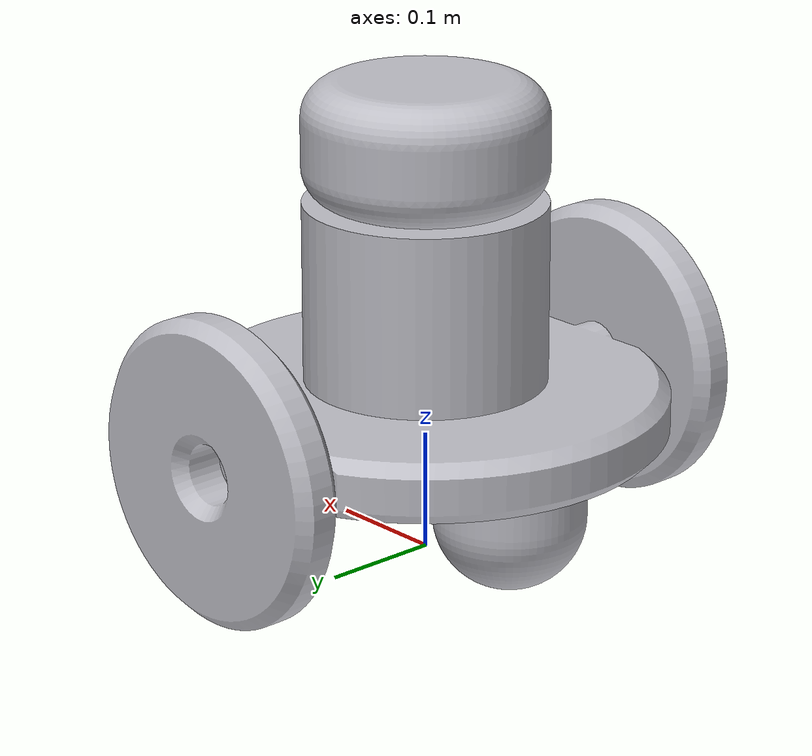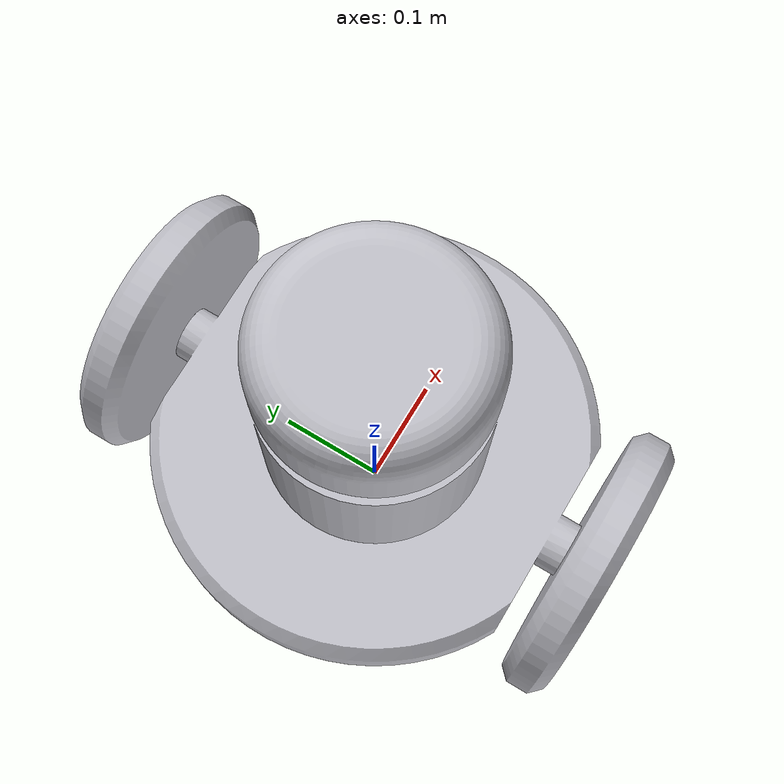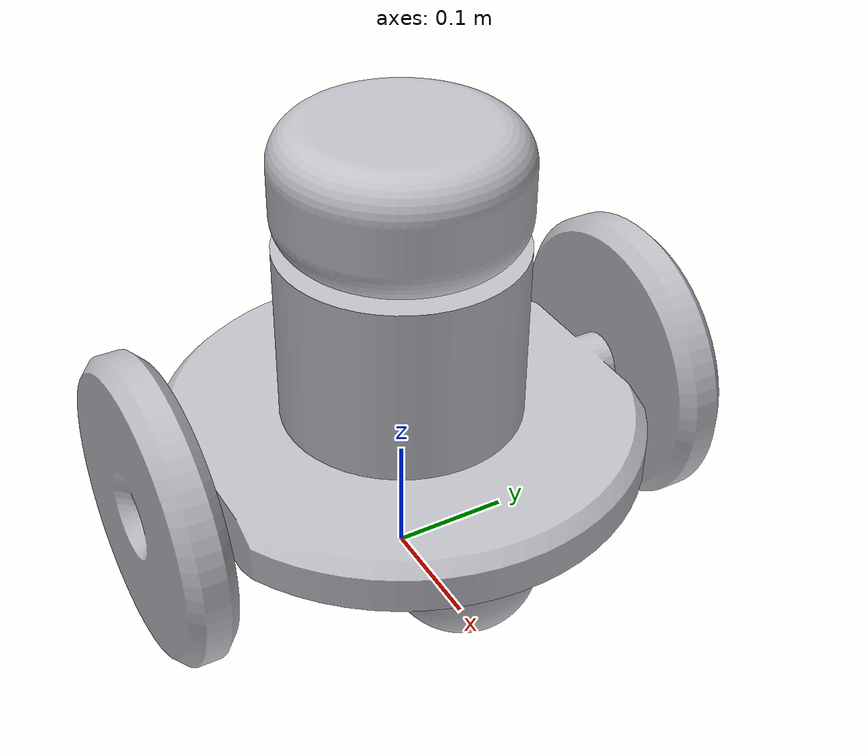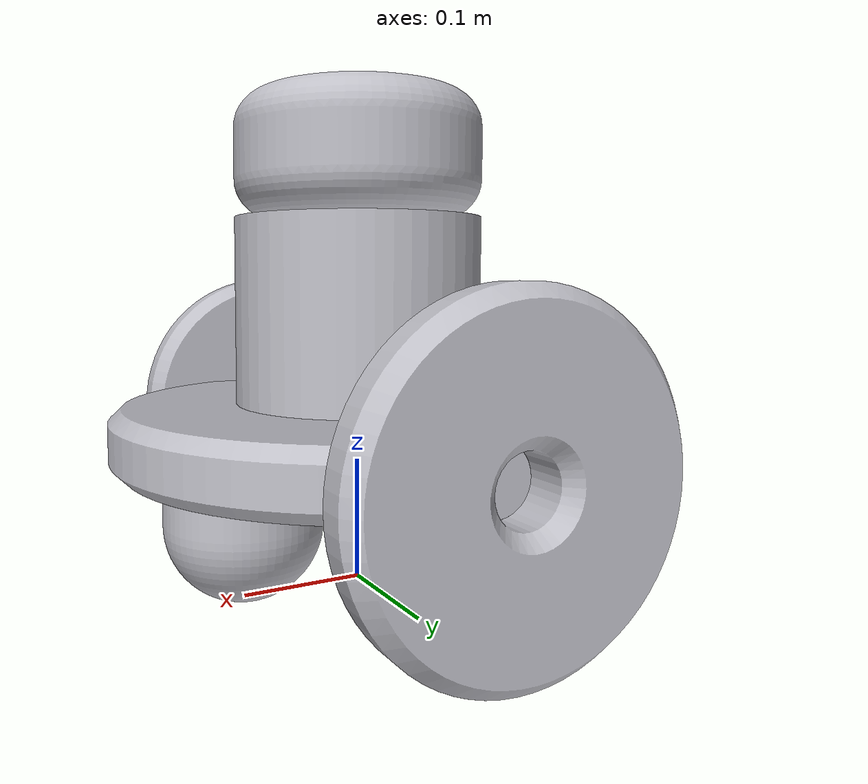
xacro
<?xml version="1.0" ?>
<robot name="practice" xmlns:xacro="http://www.ros.org/wiki/xacro">

<xacro:include filename="$(find practice_description)/urdf/materials.xacro" />
<xacro:include filename="$(find practice_description)/urdf/practice.trans" />
<xacro:include filename="$(find practice_description)/urdf/practice.gazebo" />
<link name="base_link">
  <inertial>
    <origin rpy="0 0 0" xyz="0.0 2.7212371556475855e-17 0.16906130665291902"/>
    <mass value="11.336777546239329"/>
    <inertia ixx="0.108725" ixy="0.0" ixz="-0.0" iyy="0.11472" iyz="0.0" izz="0.146245"/>
  </inertial>
  <visual>
    <origin rpy="0 0 0" xyz="0 0 0"/>
    <geometry>
      <mesh filename="package://practice_description/meshes/base_link.stl" scale="0.001 0.001 0.001"/>
    </geometry>
    <material name="silver"/>
  </visual>
  <collision>
    <origin rpy="0 0 0" xyz="0 0 0"/>
    <geometry>
      <mesh filename="package://practice_description/meshes/base_link.stl" scale="0.001 0.001 0.001"/>
    </geometry>
  </collision>
</link>

<link name="right_wheel_1">
  <inertial>
    <origin rpy="0 0 0" xyz="-1.1407541584168288e-13 -0.01991682776501391 -1.3877787807814457e-17"/>
    <mass value="2.926164220555174"/>
    <inertia ixx="0.011894" ixy="-0.0" ixz="-0.0" iyy="0.023049" iyz="0.0" izz="0.011894"/>
  </inertial>
  <visual>
    <origin rpy="0 0 0" xyz="-0.0 0.196894 -0.125"/>
    <geometry>
      <mesh filename="package://practice_description/meshes/right_wheel_1.stl" scale="0.001 0.001 0.001"/>
    </geometry>
    <material name="silver"/>
  </visual>
  <collision>
    <origin rpy="0 0 0" xyz="-0.0 0.196894 -0.125"/>
    <geometry>
      <mesh filename="package://practice_description/meshes/right_wheel_1.stl" scale="0.001 0.001 0.001"/>
    </geometry>
  </collision>
</link>

<link name="left_wheel_1">
  <inertial>
    <origin rpy="0 0 0" xyz="0.0 0.019916827765013967 -4.163336342344337e-17"/>
    <mass value="2.9261642205551803"/>
    <inertia ixx="0.011894" ixy="-0.0" ixz="-0.0" iyy="0.023049" iyz="0.0" izz="0.011894"/>
  </inertial>
  <visual>
    <origin rpy="0 0 0" xyz="-0.0 -0.196894 -0.125"/>
    <geometry>
      <mesh filename="package://practice_description/meshes/left_wheel_1.stl" scale="0.001 0.001 0.001"/>
    </geometry>
    <material name="silver"/>
  </visual>
  <collision>
    <origin rpy="0 0 0" xyz="-0.0 -0.196894 -0.125"/>
    <geometry>
      <mesh filename="package://practice_description/meshes/left_wheel_1.stl" scale="0.001 0.001 0.001"/>
    </geometry>
  </collision>
</link>

<link name="castor_rear_1">
  <inertial>
    <origin rpy="0 0 0" xyz="-0.1 1.8655985092861713e-17 -0.042072891623541206"/>
    <mass value="7.653879838968424"/>
    <inertia ixx="0.01147" ixy="0.0" ixz="0.0" iyy="0.01147" iyz="-0.0" izz="0.013392"/>
  </inertial>
  <visual>
    <origin rpy="0 0 0" xyz="-0.0 -0.0 -0.1"/>
    <geometry>
      <mesh filename="package://practice_description/meshes/castor_rear_1.stl" scale="0.001 0.001 0.001"/>
    </geometry>
    <material name="silver"/>
  </visual>
  <collision>
    <origin rpy="0 0 0" xyz="-0.0 -0.0 -0.1"/>
    <geometry>
      <mesh filename="package://practice_description/meshes/castor_rear_1.stl" scale="0.001 0.001 0.001"/>
    </geometry>
  </collision>
</link>

<link name="castor_front_1">
  <inertial>
    <origin rpy="0 0 0" xyz="0.10000000000000002 1.8655985092861713e-17 -0.04107289162354122"/>
    <mass value="7.653879838968424"/>
    <inertia ixx="0.01147" ixy="0.0" ixz="-0.0" iyy="0.01147" iyz="-0.0" izz="0.013392"/>
  </inertial>
  <visual>
    <origin rpy="0 0 0" xyz="-0.0 -0.0 -0.1"/>
    <geometry>
      <mesh filename="package://practice_description/meshes/castor_front_1.stl" scale="0.001 0.001 0.001"/>
    </geometry>
    <material name="silver"/>
  </visual>
  <collision>
    <origin rpy="0 0 0" xyz="-0.0 -0.0 -0.1"/>
    <geometry>
      <mesh filename="package://practice_description/meshes/castor_front_1.stl" scale="0.001 0.001 0.001"/>
    </geometry>
  </collision>
</link>

<link name="Lidar__1">
  <inertial>
    <origin rpy="0 0 0" xyz="0.0 0.0 0.0500000000000001"/>
    <mass value="4.022903845857066"/>
    <inertia ixx="0.012486" ixy="0.0" ixz="0.0" iyy="0.012486" iyz="0.0" izz="0.018928"/>
  </inertial>
  <visual>
    <origin rpy="0 0 0" xyz="-0.0 -0.0 -0.3"/>
    <geometry>
      <mesh filename="package://practice_description/meshes/Lidar__1.stl" scale="0.001 0.001 0.001"/>
    </geometry>
    <material name="silver"/>
  </visual>
  <collision>
    <origin rpy="0 0 0" xyz="-0.0 -0.0 -0.3"/>
    <geometry>
      <mesh filename="package://practice_description/meshes/Lidar__1.stl" scale="0.001 0.001 0.001"/>
    </geometry>
  </collision>
</link>

<joint name="Rev1" type="continuous">
  <origin rpy="0 0 0" xyz="0.0 -0.196894 0.125"/>
  <parent link="base_link"/>
  <child link="right_wheel_1"/>
  <axis xyz="0.0 -1.0 0.0"/>
</joint>

<joint name="Rev2" type="continuous">
  <origin rpy="0 0 0" xyz="0.0 0.196894 0.125"/>
  <parent link="base_link"/>
  <child link="left_wheel_1"/>
  <axis xyz="0.0 1.0 0.0"/>
</joint>

<joint name="Rigid3" type="fixed">
  <origin rpy="0 0 0" xyz="0.0 0.0 0.1"/>
  <parent link="base_link"/>
  <child link="castor_rear_1"/>
</joint>

<joint name="Rigid4" type="fixed">
  <origin rpy="0 0 0" xyz="0.0 0.0 0.1"/>
  <parent link="base_link"/>
  <child link="castor_front_1"/>
</joint>

<joint name="Rigid5" type="fixed">
  <origin rpy="0 0 0" xyz="0.0 0.0 0.3"/>
  <parent link="base_link"/>
  <child link="Lidar__1"/>
</joint>

</robot>

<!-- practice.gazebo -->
<robot name="practice" xmlns:xacro="http://www.ros.org/wiki/xacro" >

<xacro:property name="body_color" value="Gazebo/Silver" />

<gazebo>
  <plugin filename="libgazebo_ros_control.so" name="control"/>
</gazebo>
<gazebo reference="base_link">
  <material>${body_color}</material>
  <mu1>0.2</mu1>
  <mu2>0.2</mu2>
  <selfCollide>true</selfCollide>
  <gravity>true</gravity>
</gazebo>

<gazebo reference="right_wheel_1">
  <material>${body_color}</material>
  <mu1>0.2</mu1>
  <mu2>0.2</mu2>
  <selfCollide>true</selfCollide>
</gazebo>

<gazebo reference="left_wheel_1">
  <material>${body_color}</material>
  <mu1>0.2</mu1>
  <mu2>0.2</mu2>
  <selfCollide>true</selfCollide>
</gazebo>

<gazebo reference="castor_rear_1">
  <material>${body_color}</material>
  <mu1>0.2</mu1>
  <mu2>0.2</mu2>
  <selfCollide>true</selfCollide>
</gazebo>

<gazebo reference="castor_front_1">
  <material>${body_color}</material>
  <mu1>0.2</mu1>
  <mu2>0.2</mu2>
  <selfCollide>true</selfCollide>
</gazebo>

<gazebo reference="Lidar__1">
  <material>${body_color}</material>
  <mu1>0.2</mu1>
  <mu2>0.2</mu2>
  <selfCollide>true</selfCollide>
</gazebo>

</robot>
